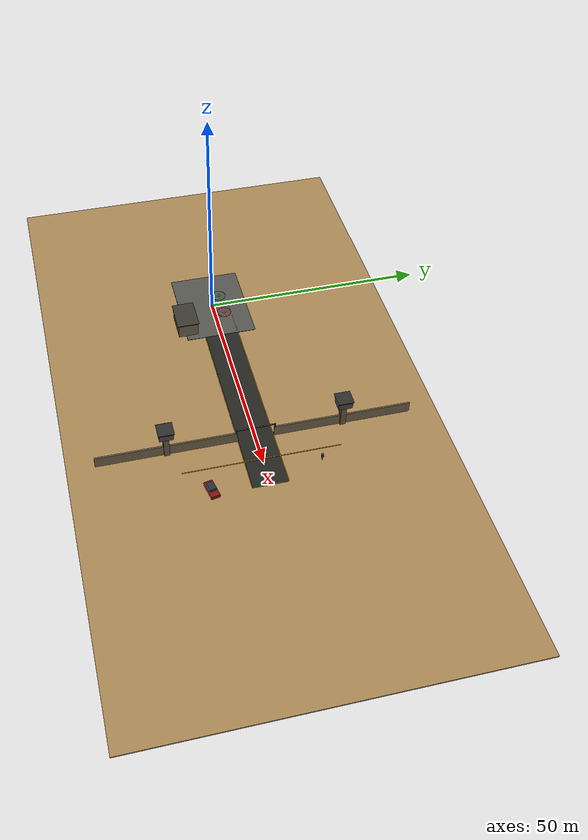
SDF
<sdf version="1.9">
 <world name="bordershield_world">
  <physics name="1ms" type="ignore">
   <max_step_size>0.001</max_step_size>
   <real_time_factor>-1.0</real_time_factor>
  </physics>
  <plugin filename="gz-sim-physics-system" name="gz::sim::systems::Physics"/>
  <plugin filename="gz-sim-sensors-system" name="gz::sim::systems::Sensors">
   <render_engine>ogre2</render_engine>
  </plugin>
  <plugin filename="gz-sim-user-commands-system" name="gz::sim::systems::UserCommands"/>
  <plugin filename="gz-sim-scene-broadcaster-system" name="gz::sim::systems::SceneBroadcaster"/>
  <plugin filename="gz-sim-imu-system" name="gz::sim::systems::Imu"/>
  <plugin filename="gz-sim-navsat-system" name="gz::sim::systems::NavSat"/>
  <scene><ambient>0.72 0.68 0.60</ambient><background>0.48 0.67 0.85</background><shadows>true</shadows></scene>
  <light type="directional" name="sun">
   <pose>0 0 80 0 0 0</pose>
   <diffuse>1.0 0.93 0.78 1</diffuse>
   <specular>0.35 0.34 0.30 1</specular>
   <attenuation>
    <range>1000</range>
    <constant>0.9</constant>
    <linear>0.01</linear>
    <quadratic>0.001</quadratic>
   </attenuation>
   <direction>-0.45 0.15 -0.9</direction>
  </light>
  <spherical_coordinates>
   <latitude_deg>-35.363262</latitude_deg>
   <longitude_deg>149.165237</longitude_deg>
   <elevation>584</elevation>
   <heading_deg>0</heading_deg>
   <surface_model>EARTH_WGS84</surface_model>
  </spherical_coordinates>
  <model name="axes">
   <static>true</static>
   <link name="link">
    <sensor name="navsat_sensor" type="navsat"><always_on>true</always_on><update_rate>1</update_rate></sensor>
   </link>
  </model>
  <model name="desert_ground">
   <static>true</static>
   <link name="ground">
    <collision name="ground_collision"><geometry><box><size>150 80 0.30</size></box></geometry></collision>
    <visual name="ground_visual">
     <pose>30 0 -0.16 0 0 0</pose>
     <geometry><box><size>150 80 0.30</size></box></geometry>
     <material>
      <ambient>0.64 0.51 0.32 1</ambient>
      <diffuse>0.64 0.51 0.32 1</diffuse>
      <specular>0.04 0.04 0.04 1</specular>
     </material>
    </visual>
   </link>
  </model>
  <model name="bordershield_base">
   <static>true</static>
   <link name="base">
    <visual name="base_surface">
     <pose>0 0 0.04 0 0 0</pose>
     <geometry><box><size>21 16 0.1</size></box></geometry>
     <material>
      <ambient>0.32 0.32 0.3 1</ambient>
      <diffuse>0.32 0.32 0.3 1</diffuse>
      <specular>0.04 0.04 0.04 1</specular>
     </material>
    </visual>
   </link>
  </model>
  <model name="main_road">
   <static>true</static>
   <link name="road">
    <visual name="road_surface">
     <pose>28 0 0.035 0 0 0</pose>
     <geometry><box><size>56 7.5 0.07</size></box></geometry>
     <material>
      <ambient>0.13 0.13 0.12 1</ambient>
      <diffuse>0.13 0.13 0.12 1</diffuse>
      <specular>0.04 0.04 0.04 1</specular>
     </material>
    </visual>
    <visual name="center_dash_1">
     <pose>7 0 0.085 0 0 0</pose>
     <geometry><box><size>3.5 0.16 0.025</size></box></geometry>
     <material>
      <ambient>0.93 0.93 0.88 1</ambient>
      <diffuse>0.93 0.93 0.88 1</diffuse>
      <specular>0.04 0.04 0.04 1</specular>
     </material>
    </visual>
    <visual name="center_dash_2">
     <pose>14 0 0.085 0 0 0</pose>
     <geometry><box><size>3.5 0.16 0.025</size></box></geometry>
     <material>
      <ambient>0.93 0.93 0.88 1</ambient>
      <diffuse>0.93 0.93 0.88 1</diffuse>
      <specular>0.04 0.04 0.04 1</specular>
     </material>
    </visual>
    <visual name="center_dash_3">
     <pose>21 0 0.085 0 0 0</pose>
     <geometry><box><size>3.5 0.16 0.025</size></box></geometry>
     <material>
      <ambient>0.93 0.93 0.88 1</ambient>
      <diffuse>0.93 0.93 0.88 1</diffuse>
      <specular>0.04 0.04 0.04 1</specular>
     </material>
    </visual>
    <visual name="center_dash_4">
     <pose>28 0 0.085 0 0 0</pose>
     <geometry><box><size>3.5 0.16 0.025</size></box></geometry>
     <material>
      <ambient>0.93 0.93 0.88 1</ambient>
      <diffuse>0.93 0.93 0.88 1</diffuse>
      <specular>0.04 0.04 0.04 1</specular>
     </material>
    </visual>
    <visual name="center_dash_5">
     <pose>35 0 0.085 0 0 0</pose>
     <geometry><box><size>3.5 0.16 0.025</size></box></geometry>
     <material>
      <ambient>0.93 0.93 0.88 1</ambient>
      <diffuse>0.93 0.93 0.88 1</diffuse>
      <specular>0.04 0.04 0.04 1</specular>
     </material>
    </visual>
    <visual name="center_dash_6">
     <pose>42 0 0.085 0 0 0</pose>
     <geometry><box><size>3.5 0.16 0.025</size></box></geometry>
     <material>
      <ambient>0.93 0.93 0.88 1</ambient>
      <diffuse>0.93 0.93 0.88 1</diffuse>
      <specular>0.04 0.04 0.04 1</specular>
     </material>
    </visual>
    <visual name="left_edge">
     <pose>28 3.85 0.075 0 0 0</pose>
     <geometry><box><size>56 0.12 0.03</size></box></geometry>
     <material>
      <ambient>0.88 0.72 0.07 1</ambient>
      <diffuse>0.88 0.72 0.07 1</diffuse>
      <specular>0.04 0.04 0.04 1</specular>
     </material>
    </visual>
    <visual name="right_edge">
     <pose>28 -3.85 0.075 0 0 0</pose>
     <geometry><box><size>56 0.12 0.03</size></box></geometry>
     <material>
      <ambient>0.88 0.72 0.07 1</ambient>
      <diffuse>0.88 0.72 0.07 1</diffuse>
      <specular>0.04 0.04 0.04 1</specular>
     </material>
    </visual>
   </link>
  </model>
  <model name="recon_pad">
   <static>true</static>
   <link name="pad">
    <visual name="pad_surface">
     <pose>-3.0 2.2 0.11 0 0 0</pose>
     <geometry><cylinder><radius>1.65</radius><length>0.07</length></cylinder></geometry>
     <material>
      <ambient>0.24 0.34 0.25 1</ambient>
      <diffuse>0.24 0.34 0.25 1</diffuse>
      <specular>0.04 0.04 0.04 1</specular>
     </material>
    </visual>
    <visual name="H_horizontal">
     <pose>-3.0 2.2 0.17 0 0 0</pose>
     <geometry><box><size>1.25 0.16 0.03</size></box></geometry>
     <material>
      <ambient>0.92 0.92 0.86 1</ambient>
      <diffuse>0.92 0.92 0.86 1</diffuse>
      <specular>0.04 0.04 0.04 1</specular>
     </material>
    </visual>
    <visual name="H_vertical">
     <pose>-3.0 2.2 0.17 0 0 0</pose>
     <geometry><box><size>0.16 1.1 0.03</size></box></geometry>
     <material>
      <ambient>0.92 0.92 0.86 1</ambient>
      <diffuse>0.92 0.92 0.86 1</diffuse>
      <specular>0.04 0.04 0.04 1</specular>
     </material>
    </visual>
   </link>
  </model>
  <model name="response_pad">
   <static>true</static>
   <link name="pad">
    <visual name="pad_surface">
     <pose>3.0 2.2 0.11 0 0 0</pose>
     <geometry><cylinder><radius>1.65</radius><length>0.07</length></cylinder></geometry>
     <material>
      <ambient>0.38 0.24 0.22 1</ambient>
      <diffuse>0.38 0.24 0.22 1</diffuse>
      <specular>0.04 0.04 0.04 1</specular>
     </material>
    </visual>
    <visual name="H_horizontal">
     <pose>3.0 2.2 0.17 0 0 0</pose>
     <geometry><box><size>1.25 0.16 0.03</size></box></geometry>
     <material>
      <ambient>0.92 0.92 0.86 1</ambient>
      <diffuse>0.92 0.92 0.86 1</diffuse>
      <specular>0.04 0.04 0.04 1</specular>
     </material>
    </visual>
    <visual name="H_vertical">
     <pose>3.0 2.2 0.17 0 0 0</pose>
     <geometry><box><size>0.16 1.1 0.03</size></box></geometry>
     <material>
      <ambient>0.92 0.92 0.86 1</ambient>
      <diffuse>0.92 0.92 0.86 1</diffuse>
      <specular>0.04 0.04 0.04 1</specular>
     </material>
    </visual>
   </link>
  </model>
  <model name="operations_building">
   <static>true</static>
   <link name="link">
    <visual name="main_building">
     <pose>5.5 -7.5 1.65 0 0 0</pose>
     <geometry><box><size>7.0 4.5 3.3</size></box></geometry>
     <material>
      <ambient>0.43 0.38 0.3 1</ambient>
      <diffuse>0.43 0.38 0.3 1</diffuse>
      <specular>0.04 0.04 0.04 1</specular>
     </material>
    </visual>
    <visual name="flat_roof">
     <pose>5.5 -7.5 3.4 0 0 0</pose>
     <geometry><box><size>7.5 5.0 0.18</size></box></geometry>
     <material>
      <ambient>0.22 0.21 0.18 1</ambient>
      <diffuse>0.22 0.21 0.18 1</diffuse>
      <specular>0.04 0.04 0.04 1</specular>
     </material>
    </visual>
    <visual name="front_door">
     <pose>5.5 -5.22 1.0 0 0 0</pose>
     <geometry><box><size>1.2 0.05 2.0</size></box></geometry>
     <material>
      <ambient>0.13 0.12 0.1 1</ambient>
      <diffuse>0.13 0.12 0.1 1</diffuse>
      <specular>0.04 0.04 0.04 1</specular>
     </material>
    </visual>
    <visual name="front_window_left">
     <pose>3.4 -5.2 1.8 0 0 0</pose>
     <geometry><box><size>1.25 0.05 0.75</size></box></geometry>
     <material>
      <ambient>0.07 0.23 0.31 1</ambient>
      <diffuse>0.07 0.23 0.31 1</diffuse>
      <specular>0.04 0.04 0.04 1</specular>
     </material>
    </visual>
    <visual name="front_window_right">
     <pose>7.6 -5.2 1.8 0 0 0</pose>
     <geometry><box><size>1.25 0.05 0.75</size></box></geometry>
     <material>
      <ambient>0.07 0.23 0.31 1</ambient>
      <diffuse>0.07 0.23 0.31 1</diffuse>
      <specular>0.04 0.04 0.04 1</specular>
     </material>
    </visual>
   </link>
  </model>
  <model name="border_wall_left">
   <static>true</static>
   <link name="wall">
    <visual name="wall">
     <pose>43 19 1.25 0 0 0</pose>
     <geometry><box><size>0.35 30 2.5</size></box></geometry>
     <material>
      <ambient>0.43 0.37 0.28 1</ambient>
      <diffuse>0.43 0.37 0.28 1</diffuse>
      <specular>0.04 0.04 0.04 1</specular>
     </material>
    </visual>
   </link>
  </model>
  <model name="border_wall_right">
   <static>true</static>
   <link name="wall">
    <visual name="wall">
     <pose>43 -19 1.25 0 0 0</pose>
     <geometry><box><size>0.35 30 2.5</size></box></geometry>
     <material>
      <ambient>0.43 0.37 0.28 1</ambient>
      <diffuse>0.43 0.37 0.28 1</diffuse>
      <specular>0.04 0.04 0.04 1</specular>
     </material>
    </visual>
   </link>
  </model>
  <model name="border_gate">
   <static>true</static>
   <link name="gate">
    <visual name="left_gate_post">
     <pose>43 4.2 1.7 0 0 0</pose>
     <geometry><cylinder><radius>0.13</radius><length>3.4</length></cylinder></geometry>
     <material>
      <ambient>0.25 0.23 0.19 1</ambient>
      <diffuse>0.25 0.23 0.19 1</diffuse>
      <specular>0.04 0.04 0.04 1</specular>
     </material>
    </visual>
    <visual name="right_gate_post">
     <pose>43 -4.2 1.7 0 0 0</pose>
     <geometry><cylinder><radius>0.13</radius><length>3.4</length></cylinder></geometry>
     <material>
      <ambient>0.25 0.23 0.19 1</ambient>
      <diffuse>0.25 0.23 0.19 1</diffuse>
      <specular>0.04 0.04 0.04 1</specular>
     </material>
    </visual>
    <visual name="gate_top">
     <pose>43 0 3.25 0 0 0</pose>
     <geometry><box><size>0.22 8.6 0.2</size></box></geometry>
     <material>
      <ambient>0.35 0.3 0.23 1</ambient>
      <diffuse>0.35 0.3 0.23 1</diffuse>
      <specular>0.04 0.04 0.04 1</specular>
     </material>
    </visual>
   </link>
  </model>
  <model name="watchtower_left">
   <static>true</static>
   <link name="link">
    <visual name="column">
     <pose>43 19 3.0 0 0 0</pose>
     <geometry><box><size>1.2 1.2 6.0</size></box></geometry>
     <material>
      <ambient>0.38 0.34 0.27 1</ambient>
      <diffuse>0.38 0.34 0.27 1</diffuse>
      <specular>0.04 0.04 0.04 1</specular>
     </material>
    </visual>
    <visual name="room">
     <pose>43 19 6.5 0 0 0</pose>
     <geometry><box><size>3.0 3.0 1.6</size></box></geometry>
     <material>
      <ambient>0.29 0.28 0.24 1</ambient>
      <diffuse>0.29 0.28 0.24 1</diffuse>
      <specular>0.04 0.04 0.04 1</specular>
     </material>
    </visual>
    <visual name="window">
     <pose>43 17.47 6.55 0 0 0</pose>
     <geometry><box><size>2.2 0.05 0.6</size></box></geometry>
     <material>
      <ambient>0.05 0.18 0.24 1</ambient>
      <diffuse>0.05 0.18 0.24 1</diffuse>
      <specular>0.04 0.04 0.04 1</specular>
     </material>
    </visual>
    <visual name="roof">
     <pose>43 19 7.45 0 0 0</pose>
     <geometry><box><size>3.4 3.4 0.18</size></box></geometry>
     <material>
      <ambient>0.17 0.17 0.16 1</ambient>
      <diffuse>0.17 0.17 0.16 1</diffuse>
      <specular>0.04 0.04 0.04 1</specular>
     </material>
    </visual>
   </link>
  </model>
  <model name="watchtower_right">
   <static>true</static>
   <link name="link">
    <visual name="column">
     <pose>43 -19 3.0 0 0 0</pose>
     <geometry><box><size>1.2 1.2 6.0</size></box></geometry>
     <material>
      <ambient>0.38 0.34 0.27 1</ambient>
      <diffuse>0.38 0.34 0.27 1</diffuse>
      <specular>0.04 0.04 0.04 1</specular>
     </material>
    </visual>
    <visual name="room">
     <pose>43 -19 6.5 0 0 0</pose>
     <geometry><box><size>3.0 3.0 1.6</size></box></geometry>
     <material>
      <ambient>0.29 0.28 0.24 1</ambient>
      <diffuse>0.29 0.28 0.24 1</diffuse>
      <specular>0.04 0.04 0.04 1</specular>
     </material>
    </visual>
    <visual name="window">
     <pose>43 -17.47 6.55 0 0 0</pose>
     <geometry><box><size>2.2 0.05 0.6</size></box></geometry>
     <material>
      <ambient>0.05 0.18 0.24 1</ambient>
      <diffuse>0.05 0.18 0.24 1</diffuse>
      <specular>0.04 0.04 0.04 1</specular>
     </material>
    </visual>
    <visual name="roof">
     <pose>43 -19 7.45 0 0 0</pose>
     <geometry><box><size>3.4 3.4 0.18</size></box></geometry>
     <material>
      <ambient>0.17 0.17 0.16 1</ambient>
      <diffuse>0.17 0.17 0.16 1</diffuse>
      <specular>0.04 0.04 0.04 1</specular>
     </material>
    </visual>
   </link>
  </model>
  <model name="person_target">
   <static>true</static>
   <link name="link">
    <visual name="torso">
     <pose>52 12 1.15 0 0 0</pose>
     <geometry><cylinder><radius>0.22</radius><length>0.9</length></cylinder></geometry>
     <material>
      <ambient>0.12 0.14 0.55 1</ambient>
      <diffuse>0.12 0.14 0.55 1</diffuse>
      <specular>0.04 0.04 0.04 1</specular>
     </material>
    </visual>
    <visual name="head">
     <pose>52 12 1.82 0 0 0</pose>
     <geometry><sphere><radius>0.2</radius></sphere></geometry>
     <material>
      <ambient>0.76 0.57 0.42 1</ambient>
      <diffuse>0.76 0.57 0.42 1</diffuse>
      <specular>0.04 0.04 0.04 1</specular>
     </material>
    </visual>
    <visual name="left_leg">
     <pose>51.88 12 0.45 0 0 0</pose>
     <geometry><cylinder><radius>0.075</radius><length>0.8</length></cylinder></geometry>
     <material>
      <ambient>0.07 0.07 0.07 1</ambient>
      <diffuse>0.07 0.07 0.07 1</diffuse>
      <specular>0.04 0.04 0.04 1</specular>
     </material>
    </visual>
    <visual name="right_leg">
     <pose>52.12 12 0.45 0 0 0</pose>
     <geometry><cylinder><radius>0.075</radius><length>0.8</length></cylinder></geometry>
     <material>
      <ambient>0.07 0.07 0.07 1</ambient>
      <diffuse>0.07 0.07 0.07 1</diffuse>
      <specular>0.04 0.04 0.04 1</specular>
     </material>
    </visual>
   </link>
  </model>
  <model name="vehicle_target">
   <static>true</static>
   <link name="link">
    <visual name="body">
     <pose>55 -12 0.65 0 0 0.2</pose>
     <geometry><box><size>4.2 1.9 0.75</size></box></geometry>
     <material>
      <ambient>0.48 0.07 0.05 1</ambient>
      <diffuse>0.48 0.07 0.05 1</diffuse>
      <specular>0.04 0.04 0.04 1</specular>
     </material>
    </visual>
    <visual name="cabin">
     <pose>54.7 -12 1.25 0 0 0.2</pose>
     <geometry><box><size>2.0 1.5 0.68</size></box></geometry>
     <material>
      <ambient>0.14 0.18 0.2 1</ambient>
      <diffuse>0.14 0.18 0.2 1</diffuse>
      <specular>0.04 0.04 0.04 1</specular>
     </material>
    </visual>
   </link>
  </model>
  <model name="border_marker">
   <static>true</static>
   <link name="marker">
    <visual name="marker">
     <pose>49 0 0.06 0 0 0</pose>
     <geometry><box><size>0.18 34 0.07</size></box></geometry>
     <material>
      <ambient>0.86 0.64 0.06 1</ambient>
      <diffuse>0.86 0.64 0.06 1</diffuse>
      <specular>0.04 0.04 0.04 1</specular>
     </material>
    </visual>
   </link>
  </model>
 </world>
</sdf>
